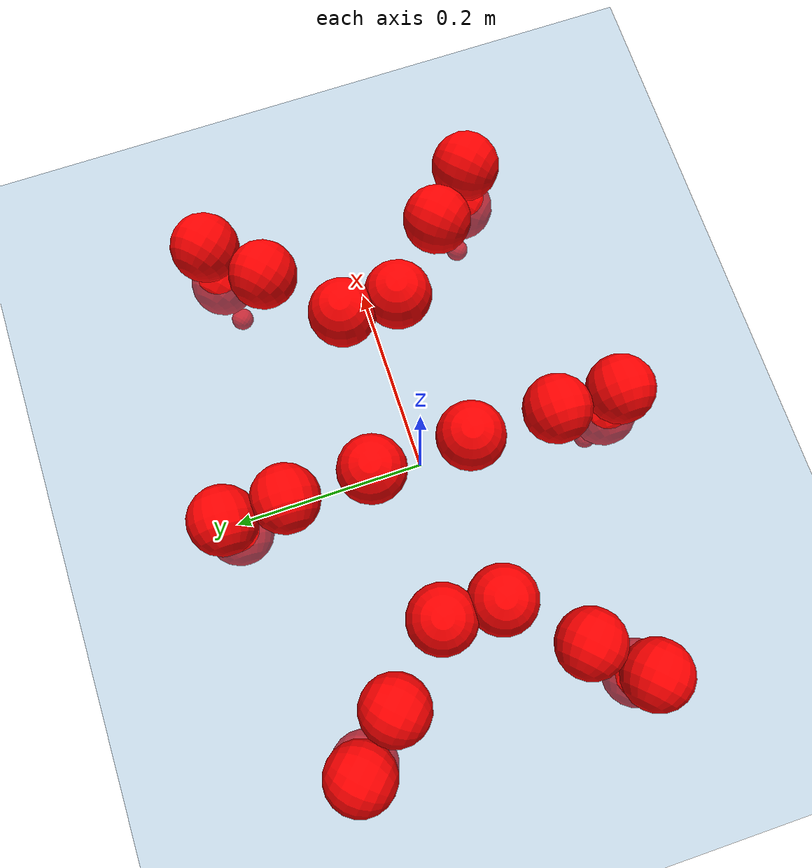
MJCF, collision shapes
<mujoco model="Golem">
  <compiler angle="radian" assetdir="assets" balanceinertia="true" inertiafromgeom="false"/>

  <option timestep="0.005" density="1.2" viscosity="2e-05"/>

  <size nkey="1"/>

  <visual>
    <quality shadowsize="8192"/>
    <map shadowclip="0.5"/>
  </visual>

  <default>
    <default class="/">
      <joint armature="0.01" damping="0.01" frictionloss="0.01"/>
      <geom contype="0" conaffinity="0" group="1" solref="-1000 -80"/>
      <site size="0.01 0.005 0.005" group="5"/>
      <general forcelimited="true" biastype="affine" gainprm="25" biasprm="0 -25 -0.5"/>
      <default class="visual">
        <geom type="mesh" group="2"/>
      </default>
      <default class="collision">
        <geom group="3"/>
      </default>
      <default class="foot">
        <geom size="0.01 0 0" condim="6" group="4" priority="1" solimp="0.015 1 0.01"/>
      </default>
      <default class="reward_collision_sphere">
        <geom group="5" rgba="1 0 0 1"/>
      </default>
    </default>
  </default>

  <asset>
    <texture type="skybox" colorspace="auto" name="//unnamed_texture_0" builtin="gradient" rgb1="0.95 0.95 0.95" rgb2="0.95 0.95 0.95" width="100" height="600"/>
    <texture type="2d" colorspace="auto" name="texplane" builtin="checker" rgb1="0.345 0.575 0.748" rgb2="0.345 0.575 0.748" markrgb="1 1 1" width="512" height="512"/>
    <material name="MatPlane" class="/" texture="texplane" texuniform="true" texrepeat="2 2" specular="0.9"/>
    <mesh name="body" class="/" file="body.stl" scale="0.001 0.001 0.001"/>
    <mesh name="coxa" class="/" file="coxa.stl" scale="0.001 0.001 0.001"/>
    <mesh name="femur" class="/" file="femur.stl" scale="0.001 0.001 0.001"/>
    <mesh name="tibia" class="/" file="tibia.stl" scale="0.001 0.001 0.001"/>
    <mesh name="tarsus" class="/" file="tarsus.stl" scale="0.001 0.001 0.001"/>
  </asset>

  <worldbody>
    <geom name="floor" class="/" size="100 100 0.125" type="plane" group="0" material="MatPlane"/>
    <light name="toplight_shadow" class="/" pos="0 0 5" dir="0.0990148 0.0990148 -0.990148" type="directional" ambient="0.04 0.04 0.04" diffuse="0.55 0.55 0.55" specular="0.12 0.12 0.12"/>
    <light name="toplight_fill" class="/" pos="0 0 5" dir="0.0990148 0.0990148 -0.990148" type="directional" castshadow="false" ambient="0.04 0.04 0.04" diffuse="0.3 0.3 0.3" specular="0.08 0.08 0.08"/>
    <body name="trunk" pos="0.000407951 -6.38359e-05 6.82847e-05" quat="1 -0.000269971 -2.96995e-05 -9.31773e-05">
      <inertial pos="6.95158e-05 -0.00122965 -0.00312666" quat="0.999999 -0.00109425 -0.000655648 0.00115245" mass="2.57577" diaginertia="0.0118719 0.000933196 0.0103945"/>
      <joint name="//unnamed_joint_0" type="free"/>
      <geom name="//unnamed_geom_1" class="/" pos="0 0 0.0644942" quat="1 0 0 0" type="mesh" rgba="0.9 0.9 0.9 1" mesh="body"/>
      <site name="imu" class="/" pos="0.137063 8.43972e-05 0.0983105" size="0.00888323"/>
      <camera name="track" class="/" pos="0 -1.24324 0" quat="0.707107 0.707107 0 0" mode="trackcom"/>
      <camera name="ego_camera" class="/" pos="0.134632 0 0.100772" quat="-0.5 -0.5 0.5 0.5"/>
      <body name="coxa_RR" pos="-0.183869 -0.0513055 0.0647894" quat="0.382482 -0.000202974 0.000125668 -0.923963">
        <inertial pos="-0.000326028 0.000811111 0.000242977" quat="0.999998 -0.00126783 -0.000636032 -0.00171502" mass="0.139586" diaginertia="0.0118734 0.00092673 0.0103429"/>
        <joint name="coxa_joint_RR" class="/" pos="0 0 0" axis="-0.00146317 -0.00219316 -0.999997" stiffness="0.000369572" range="-3.12733 3.14619" armature="0.00879769" damping="0.00779778" frictionloss="0.00869099"/>
        <geom name="//unnamed_geom_2" class="/" type="mesh" rgba="0.2 0.2 0.2 1" mesh="coxa"/>
        <geom name="//unnamed_geom_3" class="reward_collision_sphere" size="0.0355329" pos="-0.0310689 0 0"/>
        <body name="femur_RR" pos="0.0609632 0.00055481 -0.00107527" quat="0.499918 -0.500007 0.499979 0.500095">
          <inertial pos="0.000319483 0.000214173 -0.000137074" quat="1 -0.000229105 0.000123696 0.000110635" mass="0.139836" diaginertia="0.0118576 0.000924615 0.0103396"/>
          <joint name="femur_joint_RR" class="/" pos="0 0 0" axis="0.00174157 -0.00274167 -0.999995" range="-3.13392 3.13692" armature="0.00916984" damping="0" frictionloss="0.00880225"/>
          <geom name="//unnamed_geom_4" class="/" type="mesh" rgba="0.9 0.9 0.9 1" mesh="femur"/>
          <geom name="//unnamed_geom_5" class="reward_collision_sphere" size="0.0355329"/>
          <body name="tibia_RR" pos="0.000324642 -0.067305 0.00164722" quat="3.86183e-06 1 6.33409e-06 -1.42013e-05">
            <inertial pos="0.000664706 -0.000136254 5.90939e-05" quat="0.999998 0.000994246 -0.000635067 0.00151824" mass="0.141813" diaginertia="0.0120899 0.00093639 0.0105366"/>
            <joint name="tibia_joint_RR" class="/" pos="0 0 0" axis="-0.00125238 -0.00140186 0.999998" range="-3.13931 3.15506" armature="0.00887135" damping="0.00150062" frictionloss="0.00893071"/>
            <geom name="//unnamed_geom_6" class="/" type="mesh" rgba="0.2 0.2 0.2 1" mesh="tibia"/>
            <geom name="//unnamed_geom_7" class="reward_collision_sphere" size="0.0355329"/>
            <body name="tarsus_RR" pos="0.0877499 -0.000117407 0.000206689" quat="1 -3.98879e-05 4.11396e-05 -3.05455e-05">
              <inertial pos="0.0619518 0.000253436 -0.000328428" quat="0.501364 0.499858 0.500606 0.498166" mass="0.138897" diaginertia="0.0118943 0.000911356 0.0102835"/>
              <joint name="tarsus_joint_RR" class="/" pos="0 0 0" axis="0.00137005 0.00245228 0.999996" range="-3.13708 3.14147" armature="0.00887587" damping="0.00470508" frictionloss="0.0087337"/>
              <geom name="//unnamed_geom_8" class="/" type="mesh" rgba="0.9 0.9 0.9 1" mesh="tarsus"/>
              <geom name="foot_1" class="foot" size="0.00873441" pos="0.11599 0 0" quat="0 -0.707107 0 0.707107"/>
              <geom name="//unnamed_geom_10" class="reward_collision_sphere" size="0.0355329"/>
              <geom name="//unnamed_geom_11" class="reward_collision_sphere" size="0.0133248" pos="0.11133 0 0"/>
              <site name="foot_1" class="foot" pos="0.11599 0 0" quat="0 -0.707107 0 0.707107" size="0.00888323"/>
            </body>
          </body>
        </body>
      </body>
      <body name="coxa_RM" pos="-0.000552297 -0.0837507 0.0655502" quat="0.707154 -3.90545e-05 1.53673e-05 -0.70706">
        <inertial pos="0.00022843 0.000904411 -0.000206341" quat="0.999999 0.00124872 0.0002146 -0.000456028" mass="0.141362" diaginertia="0.0121433 0.000941473 0.0104672"/>
        <joint name="coxa_joint_RM" class="/" pos="0 0 0" axis="-0.00138953 0.00176034 -0.999997" range="-3.1374 3.1324" armature="0.00898881" damping="0.00842393" frictionloss="0.0085007"/>
        <geom name="//unnamed_geom_12" class="/" type="mesh" rgba="0.2 0.2 0.2 1" mesh="coxa"/>
        <geom name="//unnamed_geom_13" class="reward_collision_sphere" size="0.0355329" pos="-0.0310689 0 0"/>
        <body name="femur_RM" pos="0.0598462 -0.000645958 -0.0012729" quat="0.500192 -0.499829 0.500134 0.499845">
          <inertial pos="-0.000416566 0.000653328 1.47308e-06" quat="1 0.000221865 0.000309191 1.86586e-05" mass="0.140646" diaginertia="0.0118605 0.000933548 0.0104187"/>
          <joint name="femur_joint_RM" class="/" pos="0 0 0" axis="-2.30169e-05 0.000156182 -1" range="-3.12859 3.12836" armature="0.00902808" damping="0.0071488" frictionloss="0.00897923"/>
          <geom name="//unnamed_geom_14" class="/" type="mesh" rgba="0.9 0.9 0.9 1" mesh="femur"/>
          <geom name="//unnamed_geom_15" class="reward_collision_sphere" size="0.0355329"/>
          <body name="tibia_RM" pos="-0.000177899 -0.0668622 -0.000682984" quat="2.53873e-05 1 -2.16505e-05 1.45402e-05">
            <inertial pos="6.24497e-05 -0.000221181 0.000300096" quat="0.999995 -0.00101566 0.000301981 0.00286727" mass="0.141498" diaginertia="0.0119709 0.000934572 0.0104317"/>
            <joint name="tibia_joint_RM" class="/" pos="0 0 0" axis="0.00106714 -0.000162894 0.999999" range="-3.12725 3.14902" armature="0.0091398" damping="0.00723421" frictionloss="0.00886762"/>
            <geom name="//unnamed_geom_16" class="/" type="mesh" rgba="0.2 0.2 0.2 1" mesh="tibia"/>
            <geom name="//unnamed_geom_17" class="reward_collision_sphere" size="0.0355329"/>
            <body name="tarsus_RM" pos="0.0909968 0.000475518 0.000935669" quat="1 -7.30924e-06 7.36932e-05 -0.000187853">
              <inertial pos="0.0625539 0.000662876 0.000675631" quat="0.499495 0.496973 0.501798 0.501718" mass="0.140038" diaginertia="0.0118333 0.000927081 0.0103223"/>
              <joint name="tarsus_joint_RM" class="/" pos="0 0 0" axis="0.00101835 -0.000241383 0.999999" range="-3.1443 3.15225" armature="0.00887737" damping="0" frictionloss="0.00868595"/>
              <geom name="//unnamed_geom_18" class="/" type="mesh" rgba="0.9 0.9 0.9 1" mesh="tarsus"/>
              <geom name="foot_2" class="foot" size="0.00902051" pos="0.11599 0 0" quat="0 -0.707107 0 0.707107"/>
              <geom name="//unnamed_geom_20" class="reward_collision_sphere" size="0.0355329"/>
              <geom name="//unnamed_geom_21" class="reward_collision_sphere" size="0.0133248" pos="0.11133 0 0"/>
              <site name="foot_2" class="foot" pos="0.11599 0 0" quat="0 -0.707107 0 0.707107" size="0.00888323"/>
            </body>
          </body>
        </body>
      </body>
      <body name="coxa_RF" pos="0.185861 -0.0518517 0.0647574" quat="0.923898 -2.11735e-05 6.33328e-05 -0.382638">
        <inertial pos="5.06545e-05 0.000269179 -0.000301367" quat="0.999997 -0.00144435 0.00178832 0.00061822" mass="0.139499" diaginertia="0.0118306 0.000929245 0.010337"/>
        <joint name="coxa_joint_RF" class="/" pos="0 0 0" axis="0.00525106 -0.00272215 -0.999983" range="-3.14006 3.13049" armature="0.00881243" damping="0" frictionloss="0.00898545"/>
        <geom name="//unnamed_geom_22" class="/" type="mesh" rgba="0.2 0.2 0.2 1" mesh="coxa"/>
        <geom name="//unnamed_geom_23" class="reward_collision_sphere" size="0.0355329" pos="-0.0310689 0 0"/>
        <body name="femur_RF" pos="0.0615365 0.00103651 2.52251e-06" quat="0.500029 -0.499668 0.500138 0.500165">
          <inertial pos="0.000357144 -0.000111597 0.000573485" quat="0.999992 -0.00375484 0.0012042 -0.000876022" mass="0.141025" diaginertia="0.011985 0.000935236 0.0104984"/>
          <joint name="femur_joint_RF" class="/" pos="0 0 0" axis="0.00135565 -0.00113201 -0.999998" range="-3.15216 3.12298" armature="0.00880312" damping="0.00536668" frictionloss="0.00893129"/>
          <geom name="//unnamed_geom_24" class="/" type="mesh" rgba="0.9 0.9 0.9 1" mesh="femur"/>
          <geom name="//unnamed_geom_25" class="reward_collision_sphere" size="0.0355329"/>
          <body name="tibia_RF" pos="-0.000739943 -0.0679052 0.000338593" quat="-9.77322e-05 1 8.86686e-05 -2.88157e-05">
            <inertial pos="0.000546761 0.000823372 -1.47968e-06" quat="0.999999 -0.000643221 0.00156624 0.000305756" mass="0.138483" diaginertia="0.0118528 0.00092393 0.0103064"/>
            <joint name="tibia_joint_RF" class="/" pos="0 0 0" axis="0.000438878 0.000167491 1" range="-3.14428 3.14883" armature="0.00888381" damping="0" frictionloss="0.0088716"/>
            <geom name="//unnamed_geom_26" class="/" type="mesh" rgba="0.2 0.2 0.2 1" mesh="tibia"/>
            <geom name="//unnamed_geom_27" class="reward_collision_sphere" size="0.0355329"/>
            <body name="tarsus_RF" pos="0.0916738 0.000177792 -0.000727792" quat="1 -0.000157452 -0.000418885 0.000142163">
              <inertial pos="0.0623642 -0.000218127 0.000424997" quat="0.500048 0.499862 0.499942 0.500147" mass="0.138893" diaginertia="0.01182 0.00092203 0.0103315"/>
              <joint name="tarsus_joint_RF" class="/" pos="0 0 0" axis="0.00399991 -0.00264461 0.999989" range="-3.14023 3.12836" armature="0.00911663" damping="0" frictionloss="0.00879953"/>
              <geom name="//unnamed_geom_28" class="/" type="mesh" rgba="0.9 0.9 0.9 1" mesh="tarsus"/>
              <geom name="foot_3" class="foot" size="0.00905372" pos="0.11599 0 0" quat="0 -0.707107 0 0.707107"/>
              <geom name="//unnamed_geom_30" class="reward_collision_sphere" size="0.0355329"/>
              <geom name="//unnamed_geom_31" class="reward_collision_sphere" size="0.0133248" pos="0.11133 0 0"/>
              <site name="foot_3" class="foot" pos="0.11599 0 0" quat="0 -0.707107 0 0.707107" size="0.00888323"/>
            </body>
          </body>
        </body>
      </body>
      <body name="coxa_LR" pos="-0.183057 0.0534259 0.0660506" quat="0.382709 -2.97292e-06 -8.37703e-05 0.923869">
        <inertial pos="0.00026934 -0.000193107 0.00130217" quat="0.999991 0.000486759 0.00120766 0.0039676" mass="0.140087" diaginertia="0.0118702 0.000916623 0.0103312"/>
        <joint name="coxa_joint_LR" class="/" pos="0 0 0" axis="-0.00395785 -0.00369027 -0.999985" range="-3.14063 3.13275" armature="0.00885487" damping="0.00532705" frictionloss="0.00855783"/>
        <geom name="//unnamed_geom_32" class="/" type="mesh" rgba="0.2 0.2 0.2 1" mesh="coxa"/>
        <geom name="//unnamed_geom_33" class="reward_collision_sphere" size="0.0355329" pos="-0.0310689 0 0"/>
        <body name="femur_LR" pos="0.0628718 -0.00226536 -0.000784977" quat="0.499863 -0.500179 0.500097 0.499861">
          <inertial pos="0.000242958 0.000199901 -0.000441081" quat="0.999994 0.00184042 0.00287516 0.000606225" mass="0.139305" diaginertia="0.0119436 0.000931226 0.0103986"/>
          <joint name="femur_joint_LR" class="/" pos="0 0 0" axis="0.000969147 0.000125161 1" range="-3.14147 3.13978" armature="0.00850236" damping="0.00355279" frictionloss="0.00882191"/>
          <geom name="//unnamed_geom_34" class="/" type="mesh" rgba="0.9 0.9 0.9 1" mesh="femur"/>
          <geom name="//unnamed_geom_35" class="reward_collision_sphere" size="0.0355329"/>
          <body name="tibia_LR" pos="0.00095517 -0.0680531 -0.000999701" quat="5.96941e-05 1 -3.14811e-05 -3.00333e-05">
            <inertial pos="-0.000115248 -0.000122006 0.000580326" quat="0.999997 0.00217623 -0.000445508 -0.000859521" mass="0.138668" diaginertia="0.0118128 0.000916435 0.0102237"/>
            <joint name="tibia_joint_LR" class="/" pos="0 0 0" axis="-0.000494334 -0.00143873 -0.999999" range="-3.1516 3.12506" armature="0.00912877" damping="0" frictionloss="0.00850132"/>
            <geom name="//unnamed_geom_36" class="/" type="mesh" rgba="0.2 0.2 0.2 1" mesh="tibia"/>
            <geom name="//unnamed_geom_37" class="reward_collision_sphere" size="0.0355329"/>
            <body name="tarsus_LR" pos="0.0912402 8.87774e-05 0.00185323" quat="1 -0.00010367 -5.6564e-05 9.30104e-05">
              <inertial pos="0.0628744 0.000130832 -0.000675441" quat="0.499866 0.500009 0.500005 0.50012" mass="0.13975" diaginertia="0.0117892 0.000923175 0.0104338"/>
              <joint name="tarsus_joint_LR" class="/" pos="0 0 0" axis="0.000251589 0.00365616 -0.999993" range="-3.15528 3.154" armature="0.00923157" damping="0" frictionloss="0.00890268"/>
              <geom name="//unnamed_geom_38" class="/" type="mesh" rgba="0.9 0.9 0.9 1" mesh="tarsus"/>
              <geom name="foot_4" class="foot" size="0.00873424" pos="0.11599 0 0" quat="0.707107 0 -0.707107 0"/>
              <geom name="//unnamed_geom_40" class="reward_collision_sphere" size="0.0355329"/>
              <geom name="//unnamed_geom_41" class="reward_collision_sphere" size="0.0133248" pos="0.11133 0 0"/>
              <site name="foot_4" class="foot" pos="0.11599 0 0" quat="0.707107 0 -0.707107 0" size="0.00888323"/>
            </body>
          </body>
        </body>
      </body>
      <body name="coxa_LM" pos="-0.00189228 0.0817338 0.0652327" quat="0.707129 -0.000305126 0.000288592 0.707084">
        <inertial pos="0.000216795 0.000167477 0.00111681" quat="0.999996 0.00175401 0.00226278 0.000774549" mass="0.137889" diaginertia="0.0118461 0.000922562 0.0103008"/>
        <joint name="coxa_joint_LM" class="/" pos="0 0 0" axis="-0.00254851 -0.00264628 -0.999993" range="-3.133 3.13802" armature="0.00872437" damping="0.00649499" frictionloss="0.00884767"/>
        <geom name="//unnamed_geom_42" class="/" type="mesh" rgba="0.2 0.2 0.2 1" mesh="coxa"/>
        <geom name="//unnamed_geom_43" class="reward_collision_sphere" size="0.0355329" pos="-0.0310689 0 0"/>
        <body name="femur_LM" pos="0.0579836 0.000950721 -0.00113759" quat="0.500007 -0.499957 0.500118 0.499918">
          <inertial pos="-0.000420458 -0.000988036 0.000892036" quat="0.999999 0.000198404 -0.00144983 -0.000183066" mass="0.139592" diaginertia="0.0118886 0.000919479 0.0104546"/>
          <joint name="femur_joint_LM" class="/" pos="0 0 0" axis="-0.00173967 -0.000947343 0.999998" range="-3.13938 3.13693" armature="0.00871749" damping="0.00152028" frictionloss="0.00857579"/>
          <geom name="//unnamed_geom_44" class="/" type="mesh" rgba="0.9 0.9 0.9 1" mesh="femur"/>
          <geom name="//unnamed_geom_45" class="reward_collision_sphere" size="0.0355329"/>
          <body name="tibia_LM" pos="-0.000111143 -0.0636381 0.00153507" quat="-5.00069e-05 1 -0.000123908 -4.42e-05">
            <inertial pos="0.000406531 -0.000901405 -0.00083502" quat="0.999994 0.00178389 0.00282422 0.000833553" mass="0.139586" diaginertia="0.0119669 0.000928712 0.0104398"/>
            <joint name="tibia_joint_LM" class="/" pos="0 0 0" axis="-0.00407969 0.000948517 -0.999991" range="-3.13939 3.13288" armature="0.00906136" damping="0.00429178" frictionloss="0.00868873"/>
            <geom name="//unnamed_geom_46" class="/" type="mesh" rgba="0.2 0.2 0.2 1" mesh="tibia"/>
            <geom name="//unnamed_geom_47" class="reward_collision_sphere" size="0.0355329"/>
            <body name="tarsus_LM" pos="0.0903451 0.000166462 -0.000477376" quat="1 4.6705e-05 6.41983e-05 5.09712e-05">
              <inertial pos="0.0624935 -0.000952985 -0.000300437" quat="0.50001 0.500001 0.500072 0.499917" mass="0.139985" diaginertia="0.0119031 0.00092803 0.0103251"/>
              <joint name="tarsus_joint_LM" class="/" pos="0 0 0" axis="0.000836946 -0.00389474 -0.999992" stiffness="0.00122488" range="-3.13206 3.13942" armature="0.00897334" damping="0.00276436" frictionloss="0.00871612"/>
              <geom name="//unnamed_geom_48" class="/" type="mesh" rgba="0.9 0.9 0.9 1" mesh="tarsus"/>
              <geom name="foot_5" class="foot" size="0.00894062" pos="0.11599 0 0" quat="0.707107 0 -0.707107 0"/>
              <geom name="//unnamed_geom_50" class="reward_collision_sphere" size="0.0355329"/>
              <geom name="//unnamed_geom_51" class="reward_collision_sphere" size="0.0133248" pos="0.11133 0 0"/>
              <site name="foot_5" class="foot" pos="0.11599 0 0" quat="0.707107 0 -0.707107 0" size="0.00888323"/>
            </body>
          </body>
        </body>
      </body>
      <body name="coxa_LF" pos="0.184937 0.0514201 0.0649459" quat="0.923875 -6.01675e-05 0.000132023 0.382694">
        <inertial pos="-0.000608401 0.000508382 8.02157e-05" quat="1 -6.43528e-05 6.9689e-05 0.0001118" mass="0.139908" diaginertia="0.0120124 0.000933665 0.0103918"/>
        <joint name="coxa_joint_LF" class="/" pos="0 0 0" axis="-0.00163055 0.00425534 -0.99999" range="-3.13443 3.14469" armature="0.00917096" damping="0.000782734" frictionloss="0.00900726"/>
        <geom name="//unnamed_geom_52" class="/" type="mesh" rgba="0.2 0.2 0.2 1" mesh="coxa"/>
        <geom name="//unnamed_geom_53" class="reward_collision_sphere" size="0.0355329" pos="-0.0310689 0 0"/>
        <body name="femur_LF" pos="0.0613629 0.000334562 0.000107203" quat="0.499946 -0.499953 0.499879 0.500222">
          <inertial pos="0.000502917 -0.000943915 -0.000200444" quat="0.999999 0.00101348 -0.000206571 0.000931499" mass="0.139793" diaginertia="0.0119931 0.000924401 0.0103741"/>
          <joint name="femur_joint_LF" class="/" pos="0 0 0" axis="0.00175283 -0.000821925 0.999998" range="-3.13455 3.13305" armature="0.00887988" damping="0.00269975" frictionloss="0.00888588"/>
          <geom name="//unnamed_geom_54" class="/" type="mesh" rgba="0.9 0.9 0.9 1" mesh="femur"/>
          <geom name="//unnamed_geom_55" class="reward_collision_sphere" size="0.0355329"/>
          <body name="tibia_LF" pos="0.000370034 -0.0681674 0.000631734" quat="-0.000294809 1 0.000171278 -0.000330982">
            <inertial pos="0.000530001 0.000147601 -7.24167e-05" quat="0.999994 -0.000444757 -0.00110583 0.00313627" mass="0.140576" diaginertia="0.012048 0.000928515 0.0103875"/>
            <joint name="tibia_joint_LF" class="/" pos="0 0 0" axis="0.00126259 0.00522616 -0.999986" range="-3.14105 3.13054" armature="0.00889898" damping="0" frictionloss="0.00872222"/>
            <geom name="//unnamed_geom_56" class="/" type="mesh" rgba="0.2 0.2 0.2 1" mesh="tibia"/>
            <geom name="//unnamed_geom_57" class="reward_collision_sphere" size="0.0355329"/>
            <body name="tarsus_LF" pos="0.0913257 0.000302854 -0.000648335" quat="1 5.7646e-06 -1.27749e-07 -3.26229e-06">
              <inertial pos="0.0630501 0.000754967 0.000521725" quat="0.500156 0.501644 0.499761 0.498433" mass="0.140558" diaginertia="0.0118579 0.000926121 0.0104068"/>
              <joint name="tarsus_joint_LF" class="/" pos="0 0 0" axis="0.00137346 -0.00288614 -0.999995" range="-3.14716 3.12441" armature="0.00905183" damping="0.0101098" frictionloss="0.00885877"/>
              <geom name="//unnamed_geom_58" class="/" type="mesh" rgba="0.9 0.9 0.9 1" mesh="tarsus"/>
              <geom name="foot_6" class="foot" size="0.00857701" pos="0.11599 0 0" quat="0.707107 0 -0.707107 0"/>
              <geom name="//unnamed_geom_60" class="reward_collision_sphere" size="0.0355329"/>
              <geom name="//unnamed_geom_61" class="reward_collision_sphere" size="0.0133248" pos="0.11133 0 0"/>
              <site name="foot_6" class="foot" pos="0.11599 0 0" quat="0.707107 0 -0.707107 0" size="0.00888323"/>
            </body>
          </body>
        </body>
      </body>
    </body>
  </worldbody>

  <contact>
    <pair class="/" geom1="floor" geom2="foot_1" name="//unnamed_contact_0"/>
    <pair class="/" geom1="floor" geom2="foot_2" name="//unnamed_contact_1"/>
    <pair class="/" geom1="floor" geom2="foot_3" name="//unnamed_contact_2"/>
    <pair class="/" geom1="floor" geom2="foot_4" name="//unnamed_contact_3"/>
    <pair class="/" geom1="floor" geom2="foot_5" name="//unnamed_contact_4"/>
    <pair class="/" geom1="floor" geom2="foot_6" name="//unnamed_contact_5"/>
  </contact>

  <actuator>
    <general name="coxa_joint_RR" class="/" joint="coxa_joint_RR" forcerange="-6.56032 6.56032" gainprm="21.3612" biasprm="0 -21.3612 -0.456331"/>
    <general name="femur_joint_RR" class="/" joint="femur_joint_RR" forcerange="-6.27635 6.27635" gainprm="21.3612" biasprm="0 -21.3612 -0.456331"/>
    <general name="tibia_joint_RR" class="/" joint="tibia_joint_RR" forcerange="-6.58772 6.58772" gainprm="21.3612" biasprm="0 -21.3612 -0.456331"/>
    <general name="tarsus_joint_RR" class="/" joint="tarsus_joint_RR" forcerange="-6.43339 6.43339" gainprm="21.3612" biasprm="0 -21.3612 -0.456331"/>
    <general name="coxa_joint_RM" class="/" joint="coxa_joint_RM" forcerange="-6.65796 6.65796" gainprm="21.3612" biasprm="0 -21.3612 -0.456331"/>
    <general name="femur_joint_RM" class="/" joint="femur_joint_RM" forcerange="-6.5561 6.5561" gainprm="21.3612" biasprm="0 -21.3612 -0.456331"/>
    <general name="tibia_joint_RM" class="/" joint="tibia_joint_RM" forcerange="-6.41254 6.41254" gainprm="21.3612" biasprm="0 -21.3612 -0.456331"/>
    <general name="tarsus_joint_RM" class="/" joint="tarsus_joint_RM" forcerange="-6.58338 6.58338" gainprm="21.3612" biasprm="0 -21.3612 -0.456331"/>
    <general name="coxa_joint_RF" class="/" joint="coxa_joint_RF" forcerange="-6.33911 6.33911" gainprm="21.3612" biasprm="0 -21.3612 -0.456331"/>
    <general name="femur_joint_RF" class="/" joint="femur_joint_RF" forcerange="-6.49389 6.49389" gainprm="21.3612" biasprm="0 -21.3612 -0.456331"/>
    <general name="tibia_joint_RF" class="/" joint="tibia_joint_RF" forcerange="-6.45276 6.45276" gainprm="21.3612" biasprm="0 -21.3612 -0.456331"/>
    <general name="tarsus_joint_RF" class="/" joint="tarsus_joint_RF" forcerange="-6.49225 6.49225" gainprm="21.3612" biasprm="0 -21.3612 -0.456331"/>
    <general name="coxa_joint_LR" class="/" joint="coxa_joint_LR" forcerange="-6.46701 6.46701" gainprm="21.3612" biasprm="0 -21.3612 -0.456331"/>
    <general name="femur_joint_LR" class="/" joint="femur_joint_LR" forcerange="-6.47613 6.47613" gainprm="21.3612" biasprm="0 -21.3612 -0.456331"/>
    <general name="tibia_joint_LR" class="/" joint="tibia_joint_LR" forcerange="-6.29298 6.29298" gainprm="21.3612" biasprm="0 -21.3612 -0.456331"/>
    <general name="tarsus_joint_LR" class="/" joint="tarsus_joint_LR" forcerange="-6.52115 6.52115" gainprm="21.3612" biasprm="0 -21.3612 -0.456331"/>
    <general name="coxa_joint_LM" class="/" joint="coxa_joint_LM" forcerange="-6.60357 6.60357" gainprm="21.3612" biasprm="0 -21.3612 -0.456331"/>
    <general name="femur_joint_LM" class="/" joint="femur_joint_LM" forcerange="-6.53439 6.53439" gainprm="21.3612" biasprm="0 -21.3612 -0.456331"/>
    <general name="tibia_joint_LM" class="/" joint="tibia_joint_LM" forcerange="-6.43363 6.43363" gainprm="21.3612" biasprm="0 -21.3612 -0.456331"/>
    <general name="tarsus_joint_LM" class="/" joint="tarsus_joint_LM" forcerange="-6.62852 6.62852" gainprm="21.3612" biasprm="0 -21.3612 -0.456331"/>
    <general name="coxa_joint_LF" class="/" joint="coxa_joint_LF" forcerange="-6.68494 6.68494" gainprm="21.3612" biasprm="0 -21.3612 -0.456331"/>
    <general name="femur_joint_LF" class="/" joint="femur_joint_LF" forcerange="-6.69134 6.69134" gainprm="21.3612" biasprm="0 -21.3612 -0.456331"/>
    <general name="tibia_joint_LF" class="/" joint="tibia_joint_LF" forcerange="-6.45313 6.45313" gainprm="21.3612" biasprm="0 -21.3612 -0.456331"/>
    <general name="tarsus_joint_LF" class="/" joint="tarsus_joint_LF" forcerange="-6.62089 6.62089" gainprm="21.3612" biasprm="0 -21.3612 -0.456331"/>
  </actuator>

  <sensor>
    <gyro site="imu" name="imu_angular_velocity"/>
    <velocimeter site="imu" name="imu_linear_velocity"/>
    <framelinvel objtype="site" objname="foot_1" name="foot_1_global_linear_velocity"/>
    <framelinvel objtype="site" objname="foot_2" name="foot_2_global_linear_velocity"/>
    <framelinvel objtype="site" objname="foot_3" name="foot_3_global_linear_velocity"/>
    <framelinvel objtype="site" objname="foot_4" name="foot_4_global_linear_velocity"/>
    <framelinvel objtype="site" objname="foot_5" name="foot_5_global_linear_velocity"/>
    <framelinvel objtype="site" objname="foot_6" name="foot_6_global_linear_velocity"/>
  </sensor>

  <keyframe>
    <key name="home" qpos="0 0 0.1457 1 0 0 0 0 0 0 0 0 0 0 0 0 0 0 0 0 0 0 0 0 0 0 0 0 0 0 0"/>
  </keyframe>
</mujoco>
